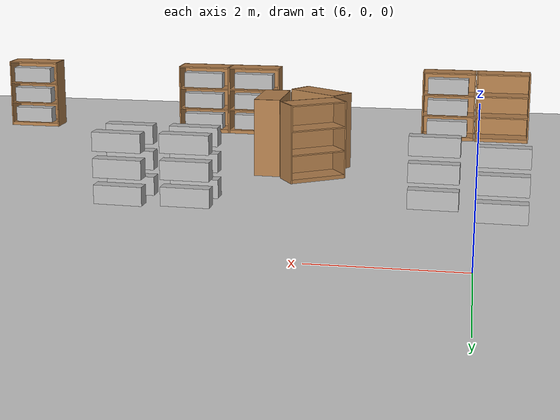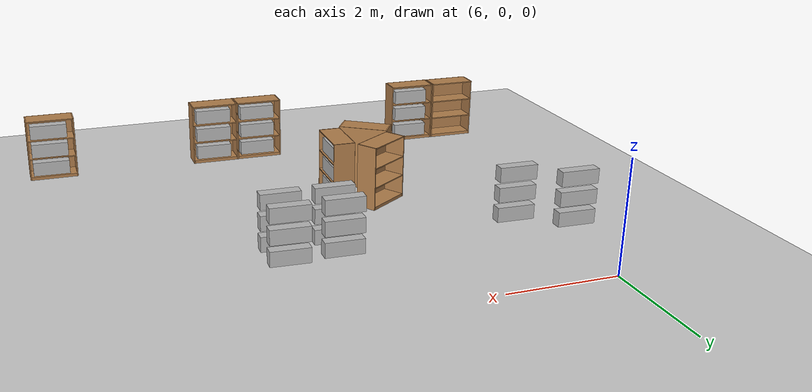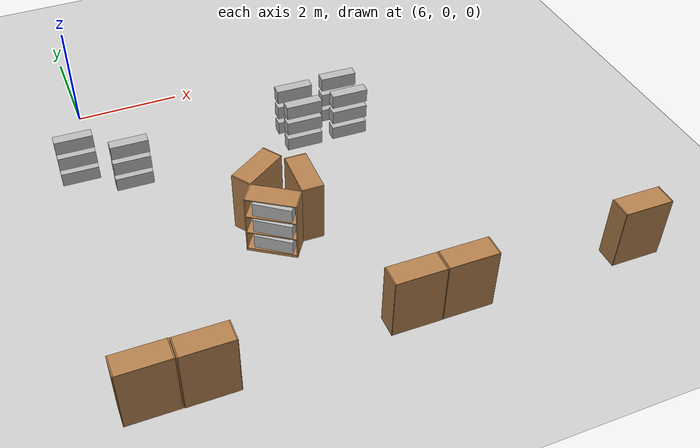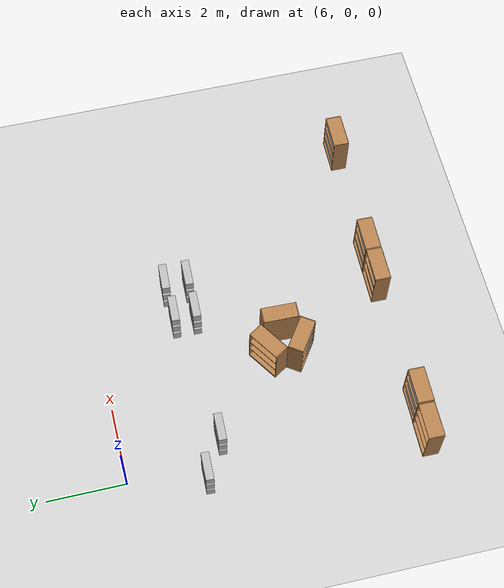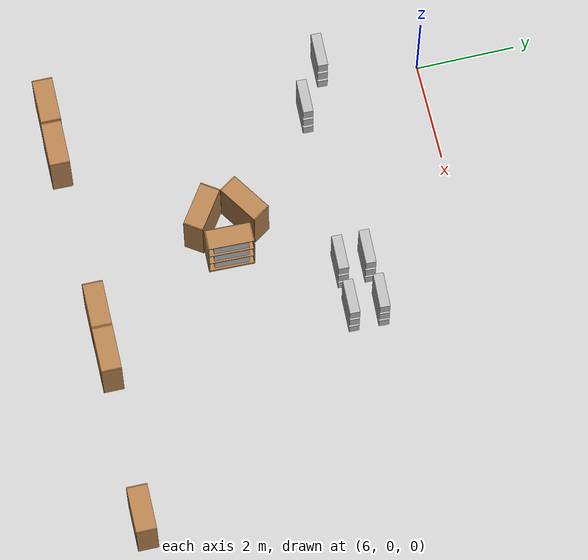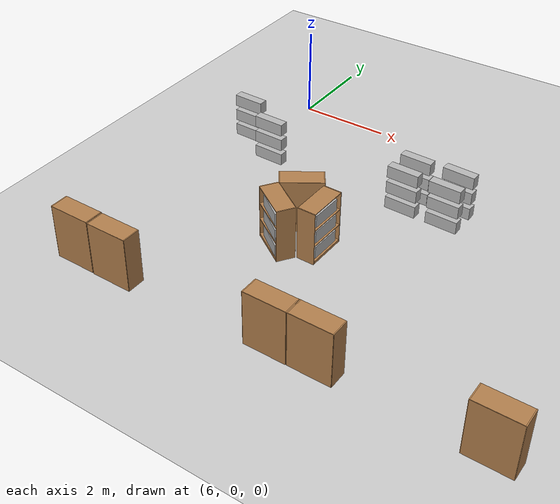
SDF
<sdf version="1.7">
 <world name="default">
  <model name="ground_plane">
   <static>1</static>
   <link name="link">
    <collision name="collision">
     <geometry><plane><normal>0 0 1</normal><size>100 100</size></plane></geometry>
     <surface><friction><ode><mu>100</mu><mu2>50</mu2></ode></friction></surface>
    </collision>
    <visual name="visual">
     <cast_shadows>0</cast_shadows>
     <geometry><plane><normal>0 0 1</normal><size>100 100</size></plane></geometry>
     <material>
      <script><uri>file://media/materials/scripts/gazebo.material</uri><name>Gazebo/Grey</name></script>
     </material>
    </visual>
   </link>
  </model>
  <model name="bookshelf_clone_clone">
   <static>1</static>
   <link name="link">
    <inertial><mass>1</mass></inertial>
    <collision name="back">
     <pose>0 0.005 0.6 0 -0 0</pose>
     <geometry><box><size>0.9 0.01 1.2</size></box></geometry>
    </collision>
    <visual name="visual1">
     <pose>0 0.005 0.6 0 -0 0</pose>
     <geometry><box><size>0.9 0.01 1.2</size></box></geometry>
     <material>
      <script><uri>file://media/materials/scripts/gazebo.material</uri><name>Gazebo/Wood</name></script>
     </material>
    </visual>
    <collision name="left_side">
     <pose>0.45 -0.195 0.6 0 -0 0</pose>
     <geometry><box><size>0.02 0.4 1.2</size></box></geometry>
    </collision>
    <visual name="visual2">
     <pose>0.45 -0.195 0.6 0 -0 0</pose>
     <geometry><box><size>0.02 0.4 1.2</size></box></geometry>
     <material>
      <script><uri>file://media/materials/scripts/gazebo.material</uri><name>Gazebo/Wood</name></script>
     </material>
    </visual>
    <collision name="right_side">
     <pose>-0.45 -0.195 0.6 0 -0 0</pose>
     <geometry><box><size>0.02 0.4 1.2</size></box></geometry>
    </collision>
    <visual name="visual3">
     <pose>-0.45 -0.195 0.6 0 -0 0</pose>
     <geometry><box><size>0.02 0.4 1.2</size></box></geometry>
     <material>
      <script><uri>file://media/materials/scripts/gazebo.material</uri><name>Gazebo/Wood</name></script>
     </material>
    </visual>
    <collision name="bottom">
     <pose>0 -0.195 0.03 0 -0 0</pose>
     <geometry><box><size>0.88 0.4 0.06</size></box></geometry>
    </collision>
    <visual name="visual4">
     <pose>0 -0.195 0.03 0 -0 0</pose>
     <geometry><box><size>0.88 0.4 0.06</size></box></geometry>
     <material>
      <script><uri>file://media/materials/scripts/gazebo.material</uri><name>Gazebo/Wood</name></script>
     </material>
    </visual>
    <collision name="top">
     <pose>0 -0.195 1.19 0 -0 0</pose>
     <geometry><box><size>0.88 0.4 0.02</size></box></geometry>
    </collision>
    <visual name="visual5">
     <pose>0 -0.195 1.19 0 -0 0</pose>
     <geometry><box><size>0.88 0.4 0.02</size></box></geometry>
     <material>
      <script><uri>file://media/materials/scripts/gazebo.material</uri><name>Gazebo/Wood</name></script>
     </material>
    </visual>
    <collision name="low_shelf">
     <pose>0 -0.195 0.43 0 -0 0</pose>
     <geometry><box><size>0.88 0.4 0.02</size></box></geometry>
    </collision>
    <visual name="visual6">
     <pose>0 -0.195 0.43 0 -0 0</pose>
     <geometry><box><size>0.88 0.4 0.02</size></box></geometry>
     <material>
      <script><uri>file://media/materials/scripts/gazebo.material</uri><name>Gazebo/Wood</name></script>
     </material>
    </visual>
    <collision name="high_shelf">
     <pose>0 -0.195 0.8 0 -0 0</pose>
     <geometry><box><size>0.88 0.4 0.02</size></box></geometry>
    </collision>
    <visual name="visual7">
     <pose>0 -0.195 0.8 0 -0 0</pose>
     <geometry><box><size>0.88 0.4 0.02</size></box></geometry>
     <material>
      <script><uri>file://media/materials/scripts/gazebo.material</uri><name>Gazebo/Wood</name></script>
     </material>
    </visual>
   </link>
   <pose>5.52396 -7.61033 0.012624 0 -0 3.13078</pose>
  </model>
  <model name="bookshelf_clone_clone_clone">
   <static>1</static>
   <link name="link">
    <inertial><mass>1</mass></inertial>
    <collision name="back">
     <pose>0 0.005 0.6 0 -0 0</pose>
     <geometry><box><size>0.9 0.01 1.2</size></box></geometry>
    </collision>
    <visual name="visual1">
     <pose>0 0.005 0.6 0 -0 0</pose>
     <geometry><box><size>0.9 0.01 1.2</size></box></geometry>
     <material>
      <script><uri>file://media/materials/scripts/gazebo.material</uri><name>Gazebo/Wood</name></script>
     </material>
    </visual>
    <collision name="left_side">
     <pose>0.45 -0.195 0.6 0 -0 0</pose>
     <geometry><box><size>0.02 0.4 1.2</size></box></geometry>
    </collision>
    <visual name="visual2">
     <pose>0.45 -0.195 0.6 0 -0 0</pose>
     <geometry><box><size>0.02 0.4 1.2</size></box></geometry>
     <material>
      <script><uri>file://media/materials/scripts/gazebo.material</uri><name>Gazebo/Wood</name></script>
     </material>
    </visual>
    <collision name="right_side">
     <pose>-0.45 -0.195 0.6 0 -0 0</pose>
     <geometry><box><size>0.02 0.4 1.2</size></box></geometry>
    </collision>
    <visual name="visual3">
     <pose>-0.45 -0.195 0.6 0 -0 0</pose>
     <geometry><box><size>0.02 0.4 1.2</size></box></geometry>
     <material>
      <script><uri>file://media/materials/scripts/gazebo.material</uri><name>Gazebo/Wood</name></script>
     </material>
    </visual>
    <collision name="bottom">
     <pose>0 -0.195 0.03 0 -0 0</pose>
     <geometry><box><size>0.88 0.4 0.06</size></box></geometry>
    </collision>
    <visual name="visual4">
     <pose>0 -0.195 0.03 0 -0 0</pose>
     <geometry><box><size>0.88 0.4 0.06</size></box></geometry>
     <material>
      <script><uri>file://media/materials/scripts/gazebo.material</uri><name>Gazebo/Wood</name></script>
     </material>
    </visual>
    <collision name="top">
     <pose>0 -0.195 1.19 0 -0 0</pose>
     <geometry><box><size>0.88 0.4 0.02</size></box></geometry>
    </collision>
    <visual name="visual5">
     <pose>0 -0.195 1.19 0 -0 0</pose>
     <geometry><box><size>0.88 0.4 0.02</size></box></geometry>
     <material>
      <script><uri>file://media/materials/scripts/gazebo.material</uri><name>Gazebo/Wood</name></script>
     </material>
    </visual>
    <collision name="low_shelf">
     <pose>0 -0.195 0.43 0 -0 0</pose>
     <geometry><box><size>0.88 0.4 0.02</size></box></geometry>
    </collision>
    <visual name="visual6">
     <pose>0 -0.195 0.43 0 -0 0</pose>
     <geometry><box><size>0.88 0.4 0.02</size></box></geometry>
     <material>
      <script><uri>file://media/materials/scripts/gazebo.material</uri><name>Gazebo/Wood</name></script>
     </material>
    </visual>
    <collision name="high_shelf">
     <pose>0 -0.195 0.8 0 -0 0</pose>
     <geometry><box><size>0.88 0.4 0.02</size></box></geometry>
    </collision>
    <visual name="visual7">
     <pose>0 -0.195 0.8 0 -0 0</pose>
     <geometry><box><size>0.88 0.4 0.02</size></box></geometry>
     <material>
      <script><uri>file://media/materials/scripts/gazebo.material</uri><name>Gazebo/Wood</name></script>
     </material>
    </visual>
   </link>
   <pose>6.45684 -7.62988 0.012624 0 -0 3.13078</pose>
  </model>
  <model name="bookshelf_clone_clone_clone_0">
   <static>1</static>
   <link name="link">
    <inertial><mass>1</mass></inertial>
    <collision name="back">
     <pose>0 0.005 0.6 0 -0 0</pose>
     <geometry><box><size>0.9 0.01 1.2</size></box></geometry>
    </collision>
    <visual name="visual1">
     <pose>0 0.005 0.6 0 -0 0</pose>
     <geometry><box><size>0.9 0.01 1.2</size></box></geometry>
     <material>
      <script><uri>file://media/materials/scripts/gazebo.material</uri><name>Gazebo/Wood</name></script>
     </material>
    </visual>
    <collision name="left_side">
     <pose>0.45 -0.195 0.6 0 -0 0</pose>
     <geometry><box><size>0.02 0.4 1.2</size></box></geometry>
    </collision>
    <visual name="visual2">
     <pose>0.45 -0.195 0.6 0 -0 0</pose>
     <geometry><box><size>0.02 0.4 1.2</size></box></geometry>
     <material>
      <script><uri>file://media/materials/scripts/gazebo.material</uri><name>Gazebo/Wood</name></script>
     </material>
    </visual>
    <collision name="right_side">
     <pose>-0.45 -0.195 0.6 0 -0 0</pose>
     <geometry><box><size>0.02 0.4 1.2</size></box></geometry>
    </collision>
    <visual name="visual3">
     <pose>-0.45 -0.195 0.6 0 -0 0</pose>
     <geometry><box><size>0.02 0.4 1.2</size></box></geometry>
     <material>
      <script><uri>file://media/materials/scripts/gazebo.material</uri><name>Gazebo/Wood</name></script>
     </material>
    </visual>
    <collision name="bottom">
     <pose>0 -0.195 0.03 0 -0 0</pose>
     <geometry><box><size>0.88 0.4 0.06</size></box></geometry>
    </collision>
    <visual name="visual4">
     <pose>0 -0.195 0.03 0 -0 0</pose>
     <geometry><box><size>0.88 0.4 0.06</size></box></geometry>
     <material>
      <script><uri>file://media/materials/scripts/gazebo.material</uri><name>Gazebo/Wood</name></script>
     </material>
    </visual>
    <collision name="top">
     <pose>0 -0.195 1.19 0 -0 0</pose>
     <geometry><box><size>0.88 0.4 0.02</size></box></geometry>
    </collision>
    <visual name="visual5">
     <pose>0 -0.195 1.19 0 -0 0</pose>
     <geometry><box><size>0.88 0.4 0.02</size></box></geometry>
     <material>
      <script><uri>file://media/materials/scripts/gazebo.material</uri><name>Gazebo/Wood</name></script>
     </material>
    </visual>
    <collision name="low_shelf">
     <pose>0 -0.195 0.43 0 -0 0</pose>
     <geometry><box><size>0.88 0.4 0.02</size></box></geometry>
    </collision>
    <visual name="visual6">
     <pose>0 -0.195 0.43 0 -0 0</pose>
     <geometry><box><size>0.88 0.4 0.02</size></box></geometry>
     <material>
      <script><uri>file://media/materials/scripts/gazebo.material</uri><name>Gazebo/Wood</name></script>
     </material>
    </visual>
    <collision name="high_shelf">
     <pose>0 -0.195 0.8 0 -0 0</pose>
     <geometry><box><size>0.88 0.4 0.02</size></box></geometry>
    </collision>
    <visual name="visual7">
     <pose>0 -0.195 0.8 0 -0 0</pose>
     <geometry><box><size>0.88 0.4 0.02</size></box></geometry>
     <material>
      <script><uri>file://media/materials/scripts/gazebo.material</uri><name>Gazebo/Wood</name></script>
     </material>
    </visual>
   </link>
   <pose>9.92381 -7.54197 0.012624 0 -0 3.13078</pose>
  </model>
  <model name="bookshelf_clone_clone_clone_1">
   <static>1</static>
   <link name="link">
    <inertial><mass>1</mass></inertial>
    <collision name="back">
     <pose>0 0.005 0.6 0 -0 0</pose>
     <geometry><box><size>0.9 0.01 1.2</size></box></geometry>
    </collision>
    <visual name="visual1">
     <pose>0 0.005 0.6 0 -0 0</pose>
     <geometry><box><size>0.9 0.01 1.2</size></box></geometry>
     <material>
      <script><uri>file://media/materials/scripts/gazebo.material</uri><name>Gazebo/Wood</name></script>
     </material>
    </visual>
    <collision name="left_side">
     <pose>0.45 -0.195 0.6 0 -0 0</pose>
     <geometry><box><size>0.02 0.4 1.2</size></box></geometry>
    </collision>
    <visual name="visual2">
     <pose>0.45 -0.195 0.6 0 -0 0</pose>
     <geometry><box><size>0.02 0.4 1.2</size></box></geometry>
     <material>
      <script><uri>file://media/materials/scripts/gazebo.material</uri><name>Gazebo/Wood</name></script>
     </material>
    </visual>
    <collision name="right_side">
     <pose>-0.45 -0.195 0.6 0 -0 0</pose>
     <geometry><box><size>0.02 0.4 1.2</size></box></geometry>
    </collision>
    <visual name="visual3">
     <pose>-0.45 -0.195 0.6 0 -0 0</pose>
     <geometry><box><size>0.02 0.4 1.2</size></box></geometry>
     <material>
      <script><uri>file://media/materials/scripts/gazebo.material</uri><name>Gazebo/Wood</name></script>
     </material>
    </visual>
    <collision name="bottom">
     <pose>0 -0.195 0.03 0 -0 0</pose>
     <geometry><box><size>0.88 0.4 0.06</size></box></geometry>
    </collision>
    <visual name="visual4">
     <pose>0 -0.195 0.03 0 -0 0</pose>
     <geometry><box><size>0.88 0.4 0.06</size></box></geometry>
     <material>
      <script><uri>file://media/materials/scripts/gazebo.material</uri><name>Gazebo/Wood</name></script>
     </material>
    </visual>
    <collision name="top">
     <pose>0 -0.195 1.19 0 -0 0</pose>
     <geometry><box><size>0.88 0.4 0.02</size></box></geometry>
    </collision>
    <visual name="visual5">
     <pose>0 -0.195 1.19 0 -0 0</pose>
     <geometry><box><size>0.88 0.4 0.02</size></box></geometry>
     <material>
      <script><uri>file://media/materials/scripts/gazebo.material</uri><name>Gazebo/Wood</name></script>
     </material>
    </visual>
    <collision name="low_shelf">
     <pose>0 -0.195 0.43 0 -0 0</pose>
     <geometry><box><size>0.88 0.4 0.02</size></box></geometry>
    </collision>
    <visual name="visual6">
     <pose>0 -0.195 0.43 0 -0 0</pose>
     <geometry><box><size>0.88 0.4 0.02</size></box></geometry>
     <material>
      <script><uri>file://media/materials/scripts/gazebo.material</uri><name>Gazebo/Wood</name></script>
     </material>
    </visual>
    <collision name="high_shelf">
     <pose>0 -0.195 0.8 0 -0 0</pose>
     <geometry><box><size>0.88 0.4 0.02</size></box></geometry>
    </collision>
    <visual name="visual7">
     <pose>0 -0.195 0.8 0 -0 0</pose>
     <geometry><box><size>0.88 0.4 0.02</size></box></geometry>
     <material>
      <script><uri>file://media/materials/scripts/gazebo.material</uri><name>Gazebo/Wood</name></script>
     </material>
    </visual>
   </link>
   <pose>10.8453 -7.5483 0.012624 0 -0 3.13078</pose>
  </model>
  <model name="bookshelf_clone_clone_clone_2">
   <static>1</static>
   <link name="link">
    <inertial><mass>1</mass></inertial>
    <collision name="back">
     <pose>0 0.005 0.6 0 -0 0</pose>
     <geometry><box><size>0.9 0.01 1.2</size></box></geometry>
    </collision>
    <visual name="visual1">
     <pose>0 0.005 0.6 0 -0 0</pose>
     <geometry><box><size>0.9 0.01 1.2</size></box></geometry>
     <material>
      <script><uri>file://media/materials/scripts/gazebo.material</uri><name>Gazebo/Wood</name></script>
     </material>
    </visual>
    <collision name="left_side">
     <pose>0.45 -0.195 0.6 0 -0 0</pose>
     <geometry><box><size>0.02 0.4 1.2</size></box></geometry>
    </collision>
    <visual name="visual2">
     <pose>0.45 -0.195 0.6 0 -0 0</pose>
     <geometry><box><size>0.02 0.4 1.2</size></box></geometry>
     <material>
      <script><uri>file://media/materials/scripts/gazebo.material</uri><name>Gazebo/Wood</name></script>
     </material>
    </visual>
    <collision name="right_side">
     <pose>-0.45 -0.195 0.6 0 -0 0</pose>
     <geometry><box><size>0.02 0.4 1.2</size></box></geometry>
    </collision>
    <visual name="visual3">
     <pose>-0.45 -0.195 0.6 0 -0 0</pose>
     <geometry><box><size>0.02 0.4 1.2</size></box></geometry>
     <material>
      <script><uri>file://media/materials/scripts/gazebo.material</uri><name>Gazebo/Wood</name></script>
     </material>
    </visual>
    <collision name="bottom">
     <pose>0 -0.195 0.03 0 -0 0</pose>
     <geometry><box><size>0.88 0.4 0.06</size></box></geometry>
    </collision>
    <visual name="visual4">
     <pose>0 -0.195 0.03 0 -0 0</pose>
     <geometry><box><size>0.88 0.4 0.06</size></box></geometry>
     <material>
      <script><uri>file://media/materials/scripts/gazebo.material</uri><name>Gazebo/Wood</name></script>
     </material>
    </visual>
    <collision name="top">
     <pose>0 -0.195 1.19 0 -0 0</pose>
     <geometry><box><size>0.88 0.4 0.02</size></box></geometry>
    </collision>
    <visual name="visual5">
     <pose>0 -0.195 1.19 0 -0 0</pose>
     <geometry><box><size>0.88 0.4 0.02</size></box></geometry>
     <material>
      <script><uri>file://media/materials/scripts/gazebo.material</uri><name>Gazebo/Wood</name></script>
     </material>
    </visual>
    <collision name="low_shelf">
     <pose>0 -0.195 0.43 0 -0 0</pose>
     <geometry><box><size>0.88 0.4 0.02</size></box></geometry>
    </collision>
    <visual name="visual6">
     <pose>0 -0.195 0.43 0 -0 0</pose>
     <geometry><box><size>0.88 0.4 0.02</size></box></geometry>
     <material>
      <script><uri>file://media/materials/scripts/gazebo.material</uri><name>Gazebo/Wood</name></script>
     </material>
    </visual>
    <collision name="high_shelf">
     <pose>0 -0.195 0.8 0 -0 0</pose>
     <geometry><box><size>0.88 0.4 0.02</size></box></geometry>
    </collision>
    <visual name="visual7">
     <pose>0 -0.195 0.8 0 -0 0</pose>
     <geometry><box><size>0.88 0.4 0.02</size></box></geometry>
     <material>
      <script><uri>file://media/materials/scripts/gazebo.material</uri><name>Gazebo/Wood</name></script>
     </material>
    </visual>
   </link>
   <pose>14.1071 -7.58237 0.012624 0 -0 3.13078</pose>
  </model>
  <model name="bookshelf_clone_clone_clone_1_clone_0_clone_2_clone_clone_clone">
   <static>1</static>
   <link name="link">
    <inertial><mass>1</mass></inertial>
    <collision name="back">
     <pose>0 0.005 0.6 0 -0 0</pose>
     <geometry><box><size>0.9 0.01 1.2</size></box></geometry>
    </collision>
    <visual name="visual1">
     <pose>0 0.005 0.6 0 -0 0</pose>
     <geometry><box><size>0.9 0.01 1.2</size></box></geometry>
     <material>
      <script><uri>file://media/materials/scripts/gazebo.material</uri><name>Gazebo/Wood</name></script>
     </material>
    </visual>
    <collision name="left_side">
     <pose>0.45 -0.195 0.6 0 -0 0</pose>
     <geometry><box><size>0.02 0.4 1.2</size></box></geometry>
    </collision>
    <visual name="visual2">
     <pose>0.45 -0.195 0.6 0 -0 0</pose>
     <geometry><box><size>0.02 0.4 1.2</size></box></geometry>
     <material>
      <script><uri>file://media/materials/scripts/gazebo.material</uri><name>Gazebo/Wood</name></script>
     </material>
    </visual>
    <collision name="right_side">
     <pose>-0.45 -0.195 0.6 0 -0 0</pose>
     <geometry><box><size>0.02 0.4 1.2</size></box></geometry>
    </collision>
    <visual name="visual3">
     <pose>-0.45 -0.195 0.6 0 -0 0</pose>
     <geometry><box><size>0.02 0.4 1.2</size></box></geometry>
     <material>
      <script><uri>file://media/materials/scripts/gazebo.material</uri><name>Gazebo/Wood</name></script>
     </material>
    </visual>
    <collision name="bottom">
     <pose>0 -0.195 0.03 0 -0 0</pose>
     <geometry><box><size>0.88 0.4 0.06</size></box></geometry>
    </collision>
    <visual name="visual4">
     <pose>0 -0.195 0.03 0 -0 0</pose>
     <geometry><box><size>0.88 0.4 0.06</size></box></geometry>
     <material>
      <script><uri>file://media/materials/scripts/gazebo.material</uri><name>Gazebo/Wood</name></script>
     </material>
    </visual>
    <collision name="top">
     <pose>0 -0.195 1.19 0 -0 0</pose>
     <geometry><box><size>0.88 0.4 0.02</size></box></geometry>
    </collision>
    <visual name="visual5">
     <pose>0 -0.195 1.19 0 -0 0</pose>
     <geometry><box><size>0.88 0.4 0.02</size></box></geometry>
     <material>
      <script><uri>file://media/materials/scripts/gazebo.material</uri><name>Gazebo/Wood</name></script>
     </material>
    </visual>
    <collision name="low_shelf">
     <pose>0 -0.195 0.43 0 -0 0</pose>
     <geometry><box><size>0.88 0.4 0.02</size></box></geometry>
    </collision>
    <visual name="visual6">
     <pose>0 -0.195 0.43 0 -0 0</pose>
     <geometry><box><size>0.88 0.4 0.02</size></box></geometry>
     <material>
      <script><uri>file://media/materials/scripts/gazebo.material</uri><name>Gazebo/Wood</name></script>
     </material>
    </visual>
    <collision name="high_shelf">
     <pose>0 -0.195 0.8 0 -0 0</pose>
     <geometry><box><size>0.88 0.4 0.02</size></box></geometry>
    </collision>
    <visual name="visual7">
     <pose>0 -0.195 0.8 0 -0 0</pose>
     <geometry><box><size>0.88 0.4 0.02</size></box></geometry>
     <material>
      <script><uri>file://media/materials/scripts/gazebo.material</uri><name>Gazebo/Wood</name></script>
     </material>
    </visual>
   </link>
   <pose>8.94503 -4.55663 0.012624 0 -0 1.54598</pose>
  </model>
  <model name="bookshelf_clone_clone_clone_1_clone_0_clone_1_clone_clone_clone">
   <static>1</static>
   <link name="link">
    <inertial><mass>1</mass></inertial>
    <collision name="back">
     <pose>0 0.005 0.6 0 -0 0</pose>
     <geometry><box><size>0.9 0.01 1.2</size></box></geometry>
    </collision>
    <visual name="visual1">
     <pose>0 0.005 0.6 0 -0 0</pose>
     <geometry><box><size>0.9 0.01 1.2</size></box></geometry>
     <material>
      <script><uri>file://media/materials/scripts/gazebo.material</uri><name>Gazebo/Wood</name></script>
     </material>
    </visual>
    <collision name="left_side">
     <pose>0.45 -0.195 0.6 0 -0 0</pose>
     <geometry><box><size>0.02 0.4 1.2</size></box></geometry>
    </collision>
    <visual name="visual2">
     <pose>0.45 -0.195 0.6 0 -0 0</pose>
     <geometry><box><size>0.02 0.4 1.2</size></box></geometry>
     <material>
      <script><uri>file://media/materials/scripts/gazebo.material</uri><name>Gazebo/Wood</name></script>
     </material>
    </visual>
    <collision name="right_side">
     <pose>-0.45 -0.195 0.6 0 -0 0</pose>
     <geometry><box><size>0.02 0.4 1.2</size></box></geometry>
    </collision>
    <visual name="visual3">
     <pose>-0.45 -0.195 0.6 0 -0 0</pose>
     <geometry><box><size>0.02 0.4 1.2</size></box></geometry>
     <material>
      <script><uri>file://media/materials/scripts/gazebo.material</uri><name>Gazebo/Wood</name></script>
     </material>
    </visual>
    <collision name="bottom">
     <pose>0 -0.195 0.03 0 -0 0</pose>
     <geometry><box><size>0.88 0.4 0.06</size></box></geometry>
    </collision>
    <visual name="visual4">
     <pose>0 -0.195 0.03 0 -0 0</pose>
     <geometry><box><size>0.88 0.4 0.06</size></box></geometry>
     <material>
      <script><uri>file://media/materials/scripts/gazebo.material</uri><name>Gazebo/Wood</name></script>
     </material>
    </visual>
    <collision name="top">
     <pose>0 -0.195 1.19 0 -0 0</pose>
     <geometry><box><size>0.88 0.4 0.02</size></box></geometry>
    </collision>
    <visual name="visual5">
     <pose>0 -0.195 1.19 0 -0 0</pose>
     <geometry><box><size>0.88 0.4 0.02</size></box></geometry>
     <material>
      <script><uri>file://media/materials/scripts/gazebo.material</uri><name>Gazebo/Wood</name></script>
     </material>
    </visual>
    <collision name="low_shelf">
     <pose>0 -0.195 0.43 0 -0 0</pose>
     <geometry><box><size>0.88 0.4 0.02</size></box></geometry>
    </collision>
    <visual name="visual6">
     <pose>0 -0.195 0.43 0 -0 0</pose>
     <geometry><box><size>0.88 0.4 0.02</size></box></geometry>
     <material>
      <script><uri>file://media/materials/scripts/gazebo.material</uri><name>Gazebo/Wood</name></script>
     </material>
    </visual>
    <collision name="high_shelf">
     <pose>0 -0.195 0.8 0 -0 0</pose>
     <geometry><box><size>0.88 0.4 0.02</size></box></geometry>
    </collision>
    <visual name="visual7">
     <pose>0 -0.195 0.8 0 -0 0</pose>
     <geometry><box><size>0.88 0.4 0.02</size></box></geometry>
     <material>
      <script><uri>file://media/materials/scripts/gazebo.material</uri><name>Gazebo/Wood</name></script>
     </material>
    </visual>
   </link>
   <pose>8.53687 -4.78938 0.029212 0 0 -0.598378</pose>
  </model>
  <model name="bookshelf_clone_clone_clone_1_clone_0_clone_3_clone_clone_clone">
   <static>1</static>
   <link name="link">
    <inertial><mass>1</mass></inertial>
    <collision name="back">
     <pose>0 0.005 0.6 0 -0 0</pose>
     <geometry><box><size>0.9 0.01 1.2</size></box></geometry>
    </collision>
    <visual name="visual1">
     <pose>0 0.005 0.6 0 -0 0</pose>
     <geometry><box><size>0.9 0.01 1.2</size></box></geometry>
     <material>
      <script><uri>file://media/materials/scripts/gazebo.material</uri><name>Gazebo/Wood</name></script>
     </material>
    </visual>
    <collision name="left_side">
     <pose>0.45 -0.195 0.6 0 -0 0</pose>
     <geometry><box><size>0.02 0.4 1.2</size></box></geometry>
    </collision>
    <visual name="visual2">
     <pose>0.45 -0.195 0.6 0 -0 0</pose>
     <geometry><box><size>0.02 0.4 1.2</size></box></geometry>
     <material>
      <script><uri>file://media/materials/scripts/gazebo.material</uri><name>Gazebo/Wood</name></script>
     </material>
    </visual>
    <collision name="right_side">
     <pose>-0.45 -0.195 0.6 0 -0 0</pose>
     <geometry><box><size>0.02 0.4 1.2</size></box></geometry>
    </collision>
    <visual name="visual3">
     <pose>-0.45 -0.195 0.6 0 -0 0</pose>
     <geometry><box><size>0.02 0.4 1.2</size></box></geometry>
     <material>
      <script><uri>file://media/materials/scripts/gazebo.material</uri><name>Gazebo/Wood</name></script>
     </material>
    </visual>
    <collision name="bottom">
     <pose>0 -0.195 0.03 0 -0 0</pose>
     <geometry><box><size>0.88 0.4 0.06</size></box></geometry>
    </collision>
    <visual name="visual4">
     <pose>0 -0.195 0.03 0 -0 0</pose>
     <geometry><box><size>0.88 0.4 0.06</size></box></geometry>
     <material>
      <script><uri>file://media/materials/scripts/gazebo.material</uri><name>Gazebo/Wood</name></script>
     </material>
    </visual>
    <collision name="top">
     <pose>0 -0.195 1.19 0 -0 0</pose>
     <geometry><box><size>0.88 0.4 0.02</size></box></geometry>
    </collision>
    <visual name="visual5">
     <pose>0 -0.195 1.19 0 -0 0</pose>
     <geometry><box><size>0.88 0.4 0.02</size></box></geometry>
     <material>
      <script><uri>file://media/materials/scripts/gazebo.material</uri><name>Gazebo/Wood</name></script>
     </material>
    </visual>
    <collision name="low_shelf">
     <pose>0 -0.195 0.43 0 -0 0</pose>
     <geometry><box><size>0.88 0.4 0.02</size></box></geometry>
    </collision>
    <visual name="visual6">
     <pose>0 -0.195 0.43 0 -0 0</pose>
     <geometry><box><size>0.88 0.4 0.02</size></box></geometry>
     <material>
      <script><uri>file://media/materials/scripts/gazebo.material</uri><name>Gazebo/Wood</name></script>
     </material>
    </visual>
    <collision name="high_shelf">
     <pose>0 -0.195 0.8 0 -0 0</pose>
     <geometry><box><size>0.88 0.4 0.02</size></box></geometry>
    </collision>
    <visual name="visual7">
     <pose>0 -0.195 0.8 0 -0 0</pose>
     <geometry><box><size>0.88 0.4 0.02</size></box></geometry>
     <material>
      <script><uri>file://media/materials/scripts/gazebo.material</uri><name>Gazebo/Wood</name></script>
     </material>
    </visual>
   </link>
   <pose>8.54265 -4.26445 0.012624 0 0 -2.55928</pose>
  </model>
  <model name="book1.xacro_clone_5">
   <link name="base_footprint">
    <inertial>
     <pose>1 1 1.5 0 -0 0</pose>
     <mass>6</mass>
     <inertia><ixx>0.7503</ixx><ixy>0</ixy><ixz>0</ixz><iyy>0.7503</iyy><iyz>0</iyz><izz>0.003</izz></inertia>
    </inertial>
    <collision name="base_footprint_fixed_joint_lump__base_link_collision">
     <pose>1 1 1 0 -0 0</pose>
     <geometry><box><size>0.7 0.2 0.27</size></box></geometry>
    </collision>
    <collision name="base_footprint_fixed_joint_lump__book_link_2_collision_1">
     <pose>1 1 1.375 0 -0 0</pose>
     <geometry><box><size>0.7 0.2 0.27</size></box></geometry>
    </collision>
    <collision name="base_footprint_fixed_joint_lump__book_link_3_collision_2">
     <pose>1 1 1.75 0 -0 0</pose>
     <geometry><box><size>0.7 0.2 0.27</size></box></geometry>
    </collision>
    <visual name="base_footprint_fixed_joint_lump__base_link_visual">
     <pose>1 1 1 0 -0 0</pose>
     <geometry><box><size>0.7 0.2 0.27</size></box></geometry>
    </visual>
    <visual name="base_footprint_fixed_joint_lump__book_link_2_visual_1">
     <pose>1 1 1.375 0 -0 0</pose>
     <geometry><box><size>0.7 0.2 0.27</size></box></geometry>
    </visual>
    <visual name="base_footprint_fixed_joint_lump__book_link_3_visual_2">
     <pose>1 1 1.75 0 -0 0</pose>
     <geometry><box><size>0.7 0.2 0.27</size></box></geometry>
    </visual>
   </link>
   <frame name="book_joint_2" attached_to="base_link"><pose>0 0 0.375 0 -0 0</pose></frame>
   <frame name="book_link_2" attached_to="book_joint_2"/>
   <frame name="book_joint_3" attached_to="base_link"><pose>0 0 0.75 0 -0 0</pose></frame>
   <frame name="book_link_3" attached_to="book_joint_3"/>
   <frame name="base_joint" attached_to="base_footprint"><pose>1 1 1 0 -0 0</pose></frame>
   <frame name="base_link" attached_to="base_joint"/>
   <pose>9.81261 -2.90641 -0.787376 0 0 -0.045344</pose>
  </model>
  <model name="book1.xacro_clone_6">
   <link name="base_footprint">
    <inertial>
     <pose>1 1 1.5 0 -0 0</pose>
     <mass>6</mass>
     <inertia><ixx>0.7503</ixx><ixy>0</ixy><ixz>0</ixz><iyy>0.7503</iyy><iyz>0</iyz><izz>0.003</izz></inertia>
    </inertial>
    <collision name="base_footprint_fixed_joint_lump__base_link_collision">
     <pose>1 1 1 0 -0 0</pose>
     <geometry><box><size>0.7 0.2 0.27</size></box></geometry>
    </collision>
    <collision name="base_footprint_fixed_joint_lump__book_link_2_collision_1">
     <pose>1 1 1.375 0 -0 0</pose>
     <geometry><box><size>0.7 0.2 0.27</size></box></geometry>
    </collision>
    <collision name="base_footprint_fixed_joint_lump__book_link_3_collision_2">
     <pose>1 1 1.75 0 -0 0</pose>
     <geometry><box><size>0.7 0.2 0.27</size></box></geometry>
    </collision>
    <visual name="base_footprint_fixed_joint_lump__base_link_visual">
     <pose>1 1 1 0 -0 0</pose>
     <geometry><box><size>0.7 0.2 0.27</size></box></geometry>
    </visual>
    <visual name="base_footprint_fixed_joint_lump__book_link_2_visual_1">
     <pose>1 1 1.375 0 -0 0</pose>
     <geometry><box><size>0.7 0.2 0.27</size></box></geometry>
    </visual>
    <visual name="base_footprint_fixed_joint_lump__book_link_3_visual_2">
     <pose>1 1 1.75 0 -0 0</pose>
     <geometry><box><size>0.7 0.2 0.27</size></box></geometry>
    </visual>
   </link>
   <frame name="book_joint_2" attached_to="base_link"><pose>0 0 0.375 0 -0 0</pose></frame>
   <frame name="book_link_2" attached_to="book_joint_2"/>
   <frame name="book_joint_3" attached_to="base_link"><pose>0 0 0.75 0 -0 0</pose></frame>
   <frame name="book_link_3" attached_to="book_joint_3"/>
   <frame name="base_joint" attached_to="base_footprint"><pose>1 1 1 0 -0 0</pose></frame>
   <frame name="base_link" attached_to="base_joint"/>
   <pose>8.88347 -2.97334 -0.787367 0 1.3e-05 -0.030721</pose>
  </model>
  <model name="book1.xacro_clone_8">
   <link name="base_footprint">
    <inertial>
     <pose>1 1 1.5 0 -0 0</pose>
     <mass>6</mass>
     <inertia><ixx>0.7503</ixx><ixy>0</ixy><ixz>0</ixz><iyy>0.7503</iyy><iyz>0</iyz><izz>0.003</izz></inertia>
    </inertial>
    <collision name="base_footprint_fixed_joint_lump__base_link_collision">
     <pose>1 1 1 0 -0 0</pose>
     <geometry><box><size>0.7 0.2 0.27</size></box></geometry>
    </collision>
    <collision name="base_footprint_fixed_joint_lump__book_link_2_collision_1">
     <pose>1 1 1.375 0 -0 0</pose>
     <geometry><box><size>0.7 0.2 0.27</size></box></geometry>
    </collision>
    <collision name="base_footprint_fixed_joint_lump__book_link_3_collision_2">
     <pose>1 1 1.75 0 -0 0</pose>
     <geometry><box><size>0.7 0.2 0.27</size></box></geometry>
    </collision>
    <visual name="base_footprint_fixed_joint_lump__base_link_visual">
     <pose>1 1 1 0 -0 0</pose>
     <geometry><box><size>0.7 0.2 0.27</size></box></geometry>
    </visual>
    <visual name="base_footprint_fixed_joint_lump__book_link_2_visual_1">
     <pose>1 1 1.375 0 -0 0</pose>
     <geometry><box><size>0.7 0.2 0.27</size></box></geometry>
    </visual>
    <visual name="base_footprint_fixed_joint_lump__book_link_3_visual_2">
     <pose>1 1 1.75 0 -0 0</pose>
     <geometry><box><size>0.7 0.2 0.27</size></box></geometry>
    </visual>
   </link>
   <frame name="book_joint_2" attached_to="base_link"><pose>0 0 0.375 0 -0 0</pose></frame>
   <frame name="book_link_2" attached_to="book_joint_2"/>
   <frame name="book_joint_3" attached_to="base_link"><pose>0 0 0.75 0 -0 0</pose></frame>
   <frame name="book_link_3" attached_to="book_joint_3"/>
   <frame name="base_joint" attached_to="base_footprint"><pose>1 1 1 0 -0 0</pose></frame>
   <frame name="base_link" attached_to="base_joint"/>
   <pose>4.61051 -2.90735 -0.787367 0 1.3e-05 -0.030721</pose>
  </model>
  <model name="book1.xacro_clone_12">
   <link name="base_footprint">
    <inertial>
     <pose>1 1 1.5 0 -0 0</pose>
     <mass>6</mass>
     <inertia><ixx>0.7503</ixx><ixy>0</ixy><ixz>0</ixz><iyy>0.7503</iyy><iyz>0</iyz><izz>0.003</izz></inertia>
    </inertial>
    <collision name="base_footprint_fixed_joint_lump__base_link_collision">
     <pose>1 1 1 0 -0 0</pose>
     <geometry><box><size>0.7 0.2 0.27</size></box></geometry>
    </collision>
    <collision name="base_footprint_fixed_joint_lump__book_link_2_collision_1">
     <pose>1 1 1.375 0 -0 0</pose>
     <geometry><box><size>0.7 0.2 0.27</size></box></geometry>
    </collision>
    <collision name="base_footprint_fixed_joint_lump__book_link_3_collision_2">
     <pose>1 1 1.75 0 -0 0</pose>
     <geometry><box><size>0.7 0.2 0.27</size></box></geometry>
    </collision>
    <visual name="base_footprint_fixed_joint_lump__base_link_visual">
     <pose>1 1 1 0 -0 0</pose>
     <geometry><box><size>0.7 0.2 0.27</size></box></geometry>
    </visual>
    <visual name="base_footprint_fixed_joint_lump__book_link_2_visual_1">
     <pose>1 1 1.375 0 -0 0</pose>
     <geometry><box><size>0.7 0.2 0.27</size></box></geometry>
    </visual>
    <visual name="base_footprint_fixed_joint_lump__book_link_3_visual_2">
     <pose>1 1 1.75 0 -0 0</pose>
     <geometry><box><size>0.7 0.2 0.27</size></box></geometry>
    </visual>
   </link>
   <frame name="book_joint_2" attached_to="base_link"><pose>0 0 0.375 0 -0 0</pose></frame>
   <frame name="book_link_2" attached_to="book_joint_2"/>
   <frame name="book_joint_3" attached_to="base_link"><pose>0 0 0.75 0 -0 0</pose></frame>
   <frame name="book_link_3" attached_to="book_joint_3"/>
   <frame name="base_joint" attached_to="base_footprint"><pose>1 1 1 0 -0 0</pose></frame>
   <frame name="base_link" attached_to="base_joint"/>
   <pose>5.4454 -8.34473 -0.787394 0 -1.3e-05 -0.030722</pose>
  </model>
  <model name="book1.xacro_clone_13">
   <link name="base_footprint">
    <inertial>
     <pose>1 1 1.5 0 -0 0</pose>
     <mass>6</mass>
     <inertia><ixx>0.7503</ixx><ixy>0</ixy><ixz>0</ixz><iyy>0.7503</iyy><iyz>0</iyz><izz>0.003</izz></inertia>
    </inertial>
    <collision name="base_footprint_fixed_joint_lump__base_link_collision">
     <pose>1 1 1 0 -0 0</pose>
     <geometry><box><size>0.7 0.2 0.27</size></box></geometry>
    </collision>
    <collision name="base_footprint_fixed_joint_lump__book_link_2_collision_1">
     <pose>1 1 1.375 0 -0 0</pose>
     <geometry><box><size>0.7 0.2 0.27</size></box></geometry>
    </collision>
    <collision name="base_footprint_fixed_joint_lump__book_link_3_collision_2">
     <pose>1 1 1.75 0 -0 0</pose>
     <geometry><box><size>0.7 0.2 0.27</size></box></geometry>
    </collision>
    <visual name="base_footprint_fixed_joint_lump__base_link_visual">
     <pose>1 1 1 0 -0 0</pose>
     <geometry><box><size>0.7 0.2 0.27</size></box></geometry>
    </visual>
    <visual name="base_footprint_fixed_joint_lump__book_link_2_visual_1">
     <pose>1 1 1.375 0 -0 0</pose>
     <geometry><box><size>0.7 0.2 0.27</size></box></geometry>
    </visual>
    <visual name="base_footprint_fixed_joint_lump__book_link_3_visual_2">
     <pose>1 1 1.75 0 -0 0</pose>
     <geometry><box><size>0.7 0.2 0.27</size></box></geometry>
    </visual>
   </link>
   <frame name="book_joint_2" attached_to="base_link"><pose>0 0 0.375 0 -0 0</pose></frame>
   <frame name="book_link_2" attached_to="book_joint_2"/>
   <frame name="book_joint_3" attached_to="base_link"><pose>0 0 0.75 0 -0 0</pose></frame>
   <frame name="book_link_3" attached_to="book_joint_3"/>
   <frame name="base_joint" attached_to="base_footprint"><pose>1 1 1 0 -0 0</pose></frame>
   <frame name="base_link" attached_to="base_joint"/>
   <pose>9.83841 -8.27381 -0.787367 0 1.3e-05 -0.030721</pose>
  </model>
  <model name="book1.xacro_clone_14">
   <link name="base_footprint">
    <inertial>
     <pose>1 1 1.5 0 -0 0</pose>
     <mass>6</mass>
     <inertia><ixx>0.7503</ixx><ixy>0</ixy><ixz>0</ixz><iyy>0.7503</iyy><iyz>0</iyz><izz>0.003</izz></inertia>
    </inertial>
    <collision name="base_footprint_fixed_joint_lump__base_link_collision">
     <pose>1 1 1 0 -0 0</pose>
     <geometry><box><size>0.7 0.2 0.27</size></box></geometry>
    </collision>
    <collision name="base_footprint_fixed_joint_lump__book_link_2_collision_1">
     <pose>1 1 1.375 0 -0 0</pose>
     <geometry><box><size>0.7 0.2 0.27</size></box></geometry>
    </collision>
    <collision name="base_footprint_fixed_joint_lump__book_link_3_collision_2">
     <pose>1 1 1.75 0 -0 0</pose>
     <geometry><box><size>0.7 0.2 0.27</size></box></geometry>
    </collision>
    <visual name="base_footprint_fixed_joint_lump__base_link_visual">
     <pose>1 1 1 0 -0 0</pose>
     <geometry><box><size>0.7 0.2 0.27</size></box></geometry>
    </visual>
    <visual name="base_footprint_fixed_joint_lump__book_link_2_visual_1">
     <pose>1 1 1.375 0 -0 0</pose>
     <geometry><box><size>0.7 0.2 0.27</size></box></geometry>
    </visual>
    <visual name="base_footprint_fixed_joint_lump__book_link_3_visual_2">
     <pose>1 1 1.75 0 -0 0</pose>
     <geometry><box><size>0.7 0.2 0.27</size></box></geometry>
    </visual>
   </link>
   <frame name="book_joint_2" attached_to="base_link"><pose>0 0 0.375 0 -0 0</pose></frame>
   <frame name="book_link_2" attached_to="book_joint_2"/>
   <frame name="book_joint_3" attached_to="base_link"><pose>0 0 0.75 0 -0 0</pose></frame>
   <frame name="book_link_3" attached_to="book_joint_3"/>
   <frame name="base_joint" attached_to="base_footprint"><pose>1 1 1 0 -0 0</pose></frame>
   <frame name="base_link" attached_to="base_joint"/>
   <pose>8.91474 -8.27853 -0.787367 0 1.3e-05 -0.030721</pose>
  </model>
  <model name="book1.xacro_clone_15">
   <link name="base_footprint">
    <inertial>
     <pose>1 1 1.5 0 -0 0</pose>
     <mass>6</mass>
     <inertia><ixx>0.7503</ixx><ixy>0</ixy><ixz>0</ixz><iyy>0.7503</iyy><iyz>0</iyz><izz>0.003</izz></inertia>
    </inertial>
    <collision name="base_footprint_fixed_joint_lump__base_link_collision">
     <pose>1 1 1 0 -0 0</pose>
     <geometry><box><size>0.7 0.2 0.27</size></box></geometry>
    </collision>
    <collision name="base_footprint_fixed_joint_lump__book_link_2_collision_1">
     <pose>1 1 1.375 0 -0 0</pose>
     <geometry><box><size>0.7 0.2 0.27</size></box></geometry>
    </collision>
    <collision name="base_footprint_fixed_joint_lump__book_link_3_collision_2">
     <pose>1 1 1.75 0 -0 0</pose>
     <geometry><box><size>0.7 0.2 0.27</size></box></geometry>
    </collision>
    <visual name="base_footprint_fixed_joint_lump__base_link_visual">
     <pose>1 1 1 0 -0 0</pose>
     <geometry><box><size>0.7 0.2 0.27</size></box></geometry>
    </visual>
    <visual name="base_footprint_fixed_joint_lump__book_link_2_visual_1">
     <pose>1 1 1.375 0 -0 0</pose>
     <geometry><box><size>0.7 0.2 0.27</size></box></geometry>
    </visual>
    <visual name="base_footprint_fixed_joint_lump__book_link_3_visual_2">
     <pose>1 1 1.75 0 -0 0</pose>
     <geometry><box><size>0.7 0.2 0.27</size></box></geometry>
    </visual>
   </link>
   <frame name="book_joint_2" attached_to="base_link"><pose>0 0 0.375 0 -0 0</pose></frame>
   <frame name="book_link_2" attached_to="book_joint_2"/>
   <frame name="book_joint_3" attached_to="base_link"><pose>0 0 0.75 0 -0 0</pose></frame>
   <frame name="book_link_3" attached_to="book_joint_3"/>
   <frame name="base_joint" attached_to="base_footprint"><pose>1 1 1 0 -0 0</pose></frame>
   <frame name="base_link" attached_to="base_joint"/>
   <pose>13.1164 -8.29901 -0.787394 0 -1.3e-05 -0.030722</pose>
  </model>
  <model name="book1.xacro_clone_16">
   <link name="base_footprint">
    <inertial>
     <pose>1 1 1.5 0 -0 0</pose>
     <mass>6</mass>
     <inertia><ixx>0.7503</ixx><ixy>0</ixy><ixz>0</ixz><iyy>0.7503</iyy><iyz>0</iyz><izz>0.003</izz></inertia>
    </inertial>
    <collision name="base_footprint_fixed_joint_lump__base_link_collision">
     <pose>1 1 1 0 -0 0</pose>
     <geometry><box><size>0.7 0.2 0.27</size></box></geometry>
    </collision>
    <collision name="base_footprint_fixed_joint_lump__book_link_2_collision_1">
     <pose>1 1 1.375 0 -0 0</pose>
     <geometry><box><size>0.7 0.2 0.27</size></box></geometry>
    </collision>
    <collision name="base_footprint_fixed_joint_lump__book_link_3_collision_2">
     <pose>1 1 1.75 0 -0 0</pose>
     <geometry><box><size>0.7 0.2 0.27</size></box></geometry>
    </collision>
    <visual name="base_footprint_fixed_joint_lump__base_link_visual">
     <pose>1 1 1 0 -0 0</pose>
     <geometry><box><size>0.7 0.2 0.27</size></box></geometry>
    </visual>
    <visual name="base_footprint_fixed_joint_lump__book_link_2_visual_1">
     <pose>1 1 1.375 0 -0 0</pose>
     <geometry><box><size>0.7 0.2 0.27</size></box></geometry>
    </visual>
    <visual name="base_footprint_fixed_joint_lump__book_link_3_visual_2">
     <pose>1 1 1.75 0 -0 0</pose>
     <geometry><box><size>0.7 0.2 0.27</size></box></geometry>
    </visual>
   </link>
   <frame name="book_joint_2" attached_to="base_link"><pose>0 0 0.375 0 -0 0</pose></frame>
   <frame name="book_link_2" attached_to="book_joint_2"/>
   <frame name="book_joint_3" attached_to="base_link"><pose>0 0 0.75 0 -0 0</pose></frame>
   <frame name="book_link_3" attached_to="book_joint_3"/>
   <frame name="base_joint" attached_to="base_footprint"><pose>1 1 1 0 -0 0</pose></frame>
   <frame name="base_link" attached_to="base_joint"/>
   <pose>10.1702 -5.58797 -0.787394 -0 -1.3e-05 1.53783</pose>
  </model>
  <model name="book1.xacro_clone_16_clone_clone_1_clone_1">
   <link name="base_footprint">
    <inertial>
     <pose>1 1 1.5 0 -0 0</pose>
     <mass>6</mass>
     <inertia><ixx>0.7503</ixx><ixy>0</ixy><ixz>0</ixz><iyy>0.7503</iyy><iyz>0</iyz><izz>0.003</izz></inertia>
    </inertial>
    <collision name="base_footprint_fixed_joint_lump__base_link_collision">
     <pose>1 1 1 0 -0 0</pose>
     <geometry><box><size>0.7 0.2 0.27</size></box></geometry>
    </collision>
    <collision name="base_footprint_fixed_joint_lump__book_link_2_collision_1">
     <pose>1 1 1.375 0 -0 0</pose>
     <geometry><box><size>0.7 0.2 0.27</size></box></geometry>
    </collision>
    <collision name="base_footprint_fixed_joint_lump__book_link_3_collision_2">
     <pose>1 1 1.75 0 -0 0</pose>
     <geometry><box><size>0.7 0.2 0.27</size></box></geometry>
    </collision>
    <visual name="base_footprint_fixed_joint_lump__base_link_visual">
     <pose>1 1 1 0 -0 0</pose>
     <geometry><box><size>0.7 0.2 0.27</size></box></geometry>
    </visual>
    <visual name="base_footprint_fixed_joint_lump__book_link_2_visual_1">
     <pose>1 1 1.375 0 -0 0</pose>
     <geometry><box><size>0.7 0.2 0.27</size></box></geometry>
    </visual>
    <visual name="base_footprint_fixed_joint_lump__book_link_3_visual_2">
     <pose>1 1 1.75 0 -0 0</pose>
     <geometry><box><size>0.7 0.2 0.27</size></box></geometry>
    </visual>
   </link>
   <frame name="book_joint_2" attached_to="base_link"><pose>0 0 0.375 0 -0 0</pose></frame>
   <frame name="book_link_2" attached_to="book_joint_2"/>
   <frame name="book_joint_3" attached_to="base_link"><pose>0 0 0.75 0 -0 0</pose></frame>
   <frame name="book_link_3" attached_to="book_joint_3"/>
   <frame name="base_joint" attached_to="base_footprint"><pose>1 1 1 0 -0 0</pose></frame>
   <frame name="base_link" attached_to="base_joint"/>
   <pose>9.80498 -4.83537 -0.770805 0 -1.2e-05 2.49228</pose>
  </model>
  <model name="book1.xacro_clone_0_clone_0">
   <link name="base_footprint">
    <inertial>
     <pose>1 1 1.5 0 -0 0</pose>
     <mass>6</mass>
     <inertia><ixx>0.7503</ixx><ixy>0</ixy><ixz>0</ixz><iyy>0.7503</iyy><iyz>0</iyz><izz>0.003</izz></inertia>
    </inertial>
    <collision name="base_footprint_fixed_joint_lump__base_link_collision">
     <pose>1 1 1 0 -0 0</pose>
     <geometry><box><size>0.7 0.2 0.27</size></box></geometry>
    </collision>
    <collision name="base_footprint_fixed_joint_lump__book_link_2_collision_1">
     <pose>1 1 1.375 0 -0 0</pose>
     <geometry><box><size>0.7 0.2 0.27</size></box></geometry>
    </collision>
    <collision name="base_footprint_fixed_joint_lump__book_link_3_collision_2">
     <pose>1 1 1.75 0 -0 0</pose>
     <geometry><box><size>0.7 0.2 0.27</size></box></geometry>
    </collision>
    <visual name="base_footprint_fixed_joint_lump__base_link_visual">
     <pose>1 1 1 0 -0 0</pose>
     <geometry><box><size>0.7 0.2 0.27</size></box></geometry>
    </visual>
    <visual name="base_footprint_fixed_joint_lump__book_link_2_visual_1">
     <pose>1 1 1.375 0 -0 0</pose>
     <geometry><box><size>0.7 0.2 0.27</size></box></geometry>
    </visual>
    <visual name="base_footprint_fixed_joint_lump__book_link_3_visual_2">
     <pose>1 1 1.75 0 -0 0</pose>
     <geometry><box><size>0.7 0.2 0.27</size></box></geometry>
    </visual>
   </link>
   <frame name="book_joint_2" attached_to="base_link"><pose>0 0 0.375 0 -0 0</pose></frame>
   <frame name="book_link_2" attached_to="book_joint_2"/>
   <frame name="book_joint_3" attached_to="base_link"><pose>0 0 0.75 0 -0 0</pose></frame>
   <frame name="book_link_3" attached_to="book_joint_3"/>
   <frame name="base_joint" attached_to="base_footprint"><pose>1 1 1 0 -0 0</pose></frame>
   <frame name="base_link" attached_to="base_joint"/>
   <pose>5.51869 -3.41975 -0.787394 0 -1.3e-05 -0.030722</pose>
  </model>
  <model name="book1.xacro_clone_0_clone_1">
   <link name="base_footprint">
    <inertial>
     <pose>1 1 1.5 0 -0 0</pose>
     <mass>6</mass>
     <inertia><ixx>0.7503</ixx><ixy>0</ixy><ixz>0</ixz><iyy>0.7503</iyy><iyz>0</iyz><izz>0.003</izz></inertia>
    </inertial>
    <collision name="base_footprint_fixed_joint_lump__base_link_collision">
     <pose>1 1 1 0 -0 0</pose>
     <geometry><box><size>0.7 0.2 0.27</size></box></geometry>
    </collision>
    <collision name="base_footprint_fixed_joint_lump__book_link_2_collision_1">
     <pose>1 1 1.375 0 -0 0</pose>
     <geometry><box><size>0.7 0.2 0.27</size></box></geometry>
    </collision>
    <collision name="base_footprint_fixed_joint_lump__book_link_3_collision_2">
     <pose>1 1 1.75 0 -0 0</pose>
     <geometry><box><size>0.7 0.2 0.27</size></box></geometry>
    </collision>
    <visual name="base_footprint_fixed_joint_lump__base_link_visual">
     <pose>1 1 1 0 -0 0</pose>
     <geometry><box><size>0.7 0.2 0.27</size></box></geometry>
    </visual>
    <visual name="base_footprint_fixed_joint_lump__book_link_2_visual_1">
     <pose>1 1 1.375 0 -0 0</pose>
     <geometry><box><size>0.7 0.2 0.27</size></box></geometry>
    </visual>
    <visual name="base_footprint_fixed_joint_lump__book_link_3_visual_2">
     <pose>1 1 1.75 0 -0 0</pose>
     <geometry><box><size>0.7 0.2 0.27</size></box></geometry>
    </visual>
   </link>
   <frame name="book_joint_2" attached_to="base_link"><pose>0 0 0.375 0 -0 0</pose></frame>
   <frame name="book_link_2" attached_to="book_joint_2"/>
   <frame name="book_joint_3" attached_to="base_link"><pose>0 0 0.75 0 -0 0</pose></frame>
   <frame name="book_link_3" attached_to="book_joint_3"/>
   <frame name="base_joint" attached_to="base_footprint"><pose>1 1 1 0 -0 0</pose></frame>
   <frame name="base_link" attached_to="base_joint"/>
   <pose>8.87717 -3.51383 -0.787367 0 1.3e-05 -0.030721</pose>
  </model>
  <model name="book1.xacro_clone_0_clone_2">
   <link name="base_footprint">
    <inertial>
     <pose>1 1 1.5 0 -0 0</pose>
     <mass>6</mass>
     <inertia><ixx>0.7503</ixx><ixy>0</ixy><ixz>0</ixz><iyy>0.7503</iyy><iyz>0</iyz><izz>0.003</izz></inertia>
    </inertial>
    <collision name="base_footprint_fixed_joint_lump__base_link_collision">
     <pose>1 1 1 0 -0 0</pose>
     <geometry><box><size>0.7 0.2 0.27</size></box></geometry>
    </collision>
    <collision name="base_footprint_fixed_joint_lump__book_link_2_collision_1">
     <pose>1 1 1.375 0 -0 0</pose>
     <geometry><box><size>0.7 0.2 0.27</size></box></geometry>
    </collision>
    <collision name="base_footprint_fixed_joint_lump__book_link_3_collision_2">
     <pose>1 1 1.75 0 -0 0</pose>
     <geometry><box><size>0.7 0.2 0.27</size></box></geometry>
    </collision>
    <visual name="base_footprint_fixed_joint_lump__base_link_visual">
     <pose>1 1 1 0 -0 0</pose>
     <geometry><box><size>0.7 0.2 0.27</size></box></geometry>
    </visual>
    <visual name="base_footprint_fixed_joint_lump__book_link_2_visual_1">
     <pose>1 1 1.375 0 -0 0</pose>
     <geometry><box><size>0.7 0.2 0.27</size></box></geometry>
    </visual>
    <visual name="base_footprint_fixed_joint_lump__book_link_3_visual_2">
     <pose>1 1 1.75 0 -0 0</pose>
     <geometry><box><size>0.7 0.2 0.27</size></box></geometry>
    </visual>
   </link>
   <frame name="book_joint_2" attached_to="base_link"><pose>0 0 0.375 0 -0 0</pose></frame>
   <frame name="book_link_2" attached_to="book_joint_2"/>
   <frame name="book_joint_3" attached_to="base_link"><pose>0 0 0.75 0 -0 0</pose></frame>
   <frame name="book_link_3" attached_to="book_joint_3"/>
   <frame name="base_joint" attached_to="base_footprint"><pose>1 1 1 0 -0 0</pose></frame>
   <frame name="base_link" attached_to="base_joint"/>
   <pose>9.81305 -3.51807 -0.787367 0 1.3e-05 -0.030721</pose>
  </model>
 </world>
</sdf>
